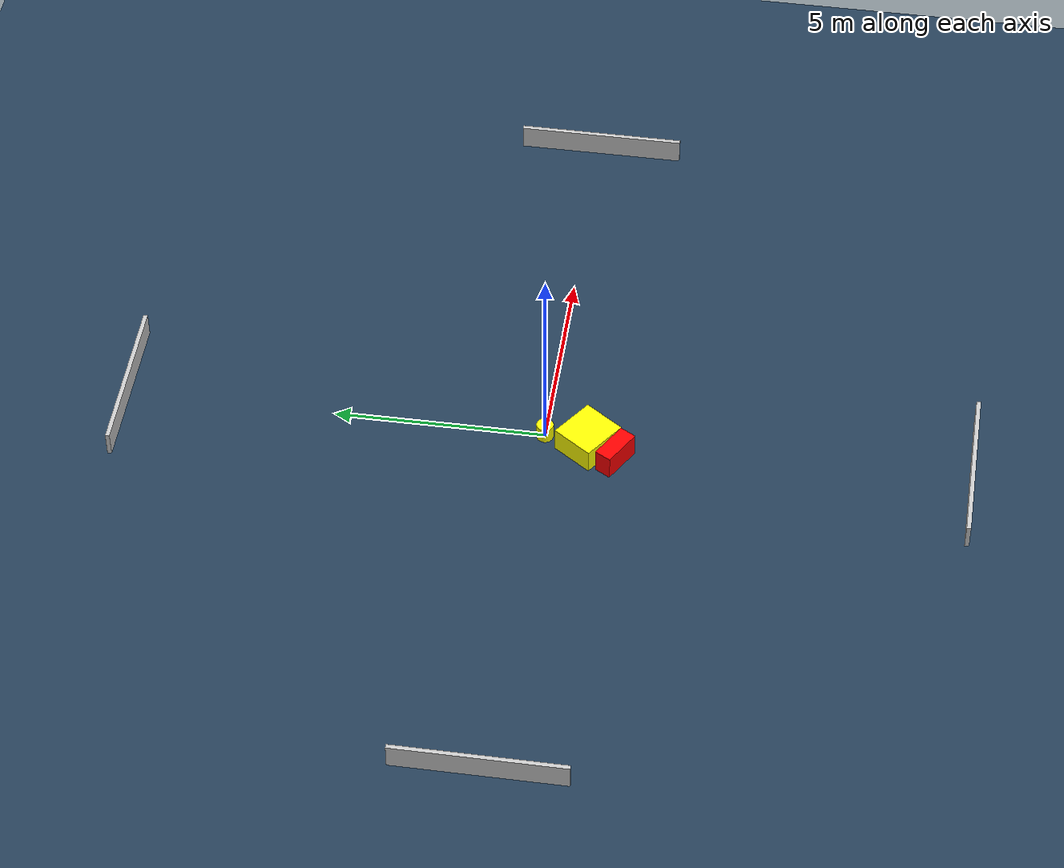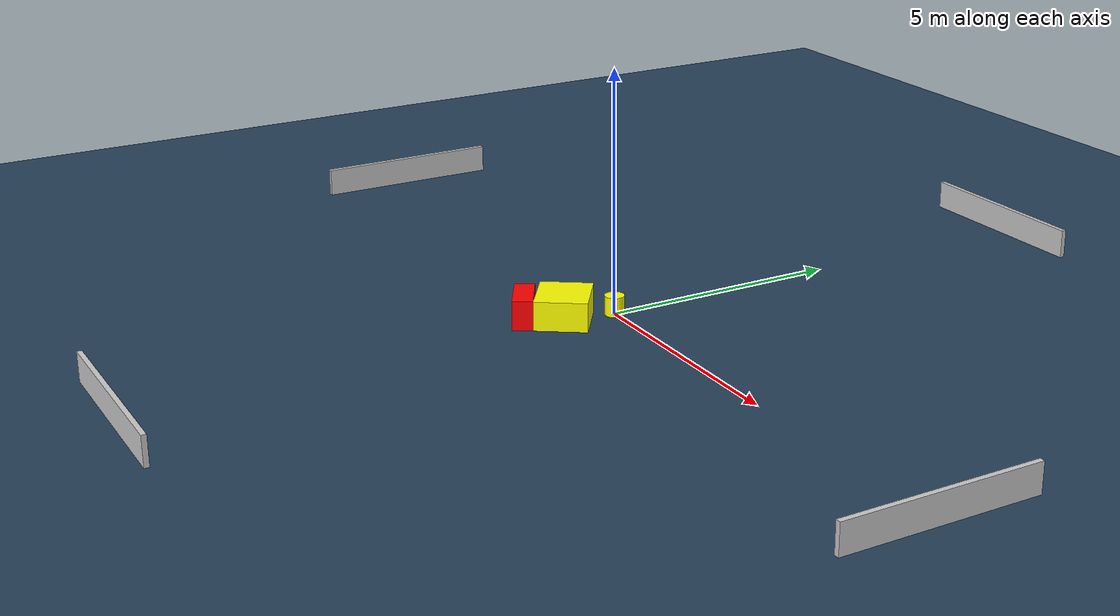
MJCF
<?xml version="1.0" ?>
<mujoco model="generated_environment">
  <option timestep="0.01" integrator="RK4" cone="elliptic"/>
  <default>
    <geom density="1"/>
  </default>
  <asset>
    <texture builtin="gradient" height="3072" name="skybox" rgb1="0.3 0.5 0.7" rgb2="0 0 0" type="skybox" width="512"/>
    <texture builtin="checker" height="300" name="groundplane" rgb1="0.2 0.3 0.4" rgb2="0.1 0.2 0.3" type="2d" width="300"/>
    <material name="groundplane" reflectance="0.2" texrepeat="5 5" texture="groundplane"/>
  </asset>
  <worldbody>
    <light dir="0 0 -1" directional="true" pos="0 0 1.5"/>
    <geom condim="3" friction="0.5 0.005 0.001" material="groundplane" name="floor" pos="0 0 0" size="0 0 0.05" type="plane"/>
    <body name="walls">
      <geom name="wall_1" condim="4" pos="-10.0 0.0 0.3" rgba="0.800000011920929 0.800000011920929 0.800000011920929 1.0" size="0.05 2.0 0.3" type="box"/>
      <geom name="wall_2" condim="4" pos="10.0 0.0 0.3" rgba="0.800000011920929 0.800000011920929 0.800000011920929 1.0" size="0.05 2.0 0.3" type="box"/>
      <geom name="wall_3" condim="4" pos="0.0 -10.0 0.3" rgba="0.800000011920929 0.800000011920929 0.800000011920929 1.0" size="2.0 0.05 0.3" type="box"/>
      <geom name="wall_4" condim="4" pos="0.0 10.0 0.3" rgba="0.800000011920929 0.800000011920929 0.800000011920929 1.0" size="2.0 0.05 0.3" type="box"/>
    </body>
    <body name="robot">
      <joint name="joint_x" type="slide" pos="0 0 0" axis="1 0 0"/>
      <joint name="joint_y" type="slide" pos="0 0 0" axis="0 1 0"/>
      <geom name="robot" type="cylinder" pos="0.0 0.0 0.2" size="0.2 0.2 0.0" mass="5.0" friction="1.0 0.005 0.0001" condim="4" rgba="1.0 1.0 0.0 1.0"/>
    </body>
    <body name="obstacle_1_movable">
      <geom name="obstacle_1_movable" condim="4" pos="-0.18143384426588274 -1.0421668159280149 0.3" euler="0 0 145.0656579229103" friction="0.0 0.005 0.001" rgba="1.0 1.0 0.0 1.0" size="0.5672570907236794 0.533159047340249 0.3" type="box" mass="0.1"/>
      <joint type="free"/>
    </body>
    <body name="obstacle_2_static">
      <geom name="obstacle_2_static" condim="4" pos="-0.5620769377956079 -1.7310312227668683 0.3" euler="0 0 239.69687276810845" friction="0.0 0.005 0.001" rgba="1.0 0.0 0.0 1.0" size="0.20670467446371232 0.48377341228784415 0.3" type="box"/>
    </body>
  </worldbody>
  <actuator>
    <motor name="actuator_x" joint="joint_x" gear="1" ctrlrange="-1 1"/>
    <motor name="actuator_y" joint="joint_y" gear="1" ctrlrange="-1 1"/>
  </actuator>
</mujoco>
